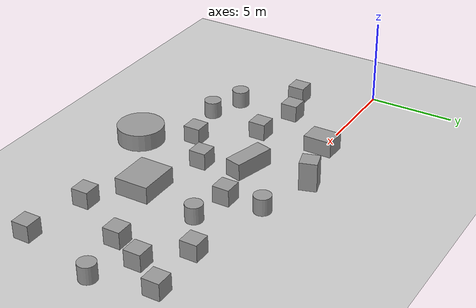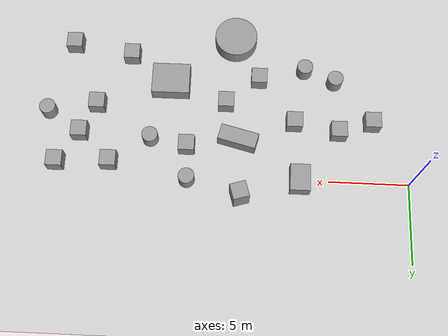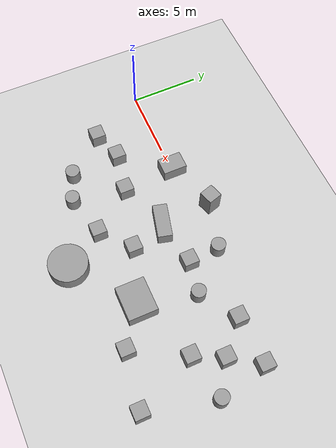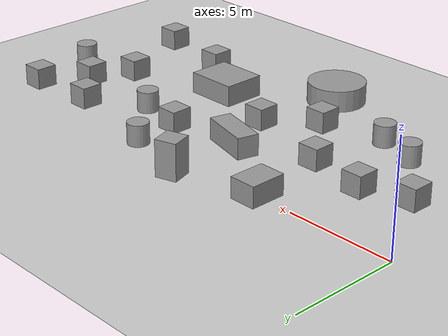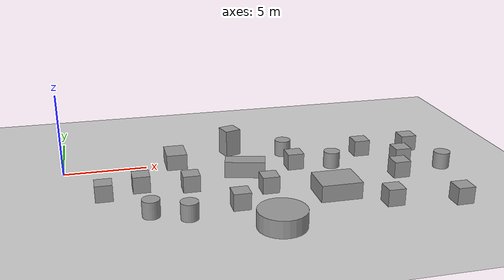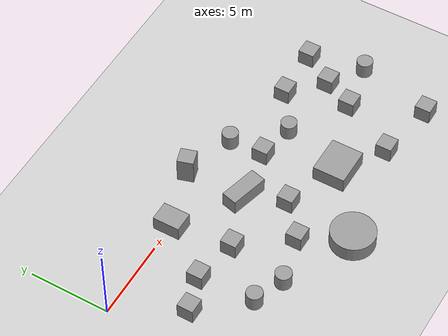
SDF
<sdf version="1.7">
 <world name="default">
  <model name="ground_plane">
   <static>1</static>
   <link name="link">
    <collision name="collision">
     <geometry><plane><normal>0 0 1</normal><size>100 100</size></plane></geometry>
     <surface><friction><ode><mu>100</mu><mu2>50</mu2></ode></friction></surface>
    </collision>
    <visual name="visual">
     <cast_shadows>0</cast_shadows>
     <geometry><plane><normal>0 0 1</normal><size>100 100</size></plane></geometry>
     <material>
      <script><uri>file://media/materials/scripts/gazebo.material</uri><name>Gazebo/Grey</name></script>
     </material>
    </visual>
   </link>
  </model>
  <model name="unit_box">
   <pose>6.82342 -0.00563 0.4785 -0 -0 -0</pose>
   <link name="link">
    <inertial>
     <mass>1</mass>
     <inertia>
      <ixx>0.166667</ixx>
      <ixy>0</ixy>
      <ixz>0</ixz>
      <iyy>0.166667</iyy>
      <iyz>0</iyz>
      <izz>0.166667</izz>
     </inertia>
    </inertial>
    <collision name="collision"><geometry><box><size>1.25115 1.68193 0.956999</size></box></geometry></collision>
    <visual name="visual">
     <geometry><box><size>1.25115 1.68193 0.956999</size></box></geometry>
     <material>
      <script><name>Gazebo/Grey</name><uri>file://media/materials/scripts/gazebo.material</uri></script>
     </material>
    </visual>
   </link>
  </model>
  <model name="unit_box_0">
   <pose>2.24803 -3.96061 0.499995 -1e-05 0 0</pose>
   <link name="link">
    <inertial>
     <mass>1</mass>
     <inertia>
      <ixx>0.166667</ixx>
      <ixy>0</ixy>
      <ixz>0</ixz>
      <iyy>0.166667</iyy>
      <iyz>0</iyz>
      <izz>0.166667</izz>
     </inertia>
    </inertial>
    <collision name="collision"><geometry><box><size>1 1 1</size></box></geometry></collision>
    <visual name="visual">
     <geometry><box><size>1 1 1</size></box></geometry>
     <material>
      <script><name>Gazebo/Grey</name><uri>file://media/materials/scripts/gazebo.material</uri></script>
     </material>
    </visual>
   </link>
  </model>
  <model name="unit_box_0_clone">
   <pose>10.5432 1.18116 0.847211 5e-06 3e-06 0.296442</pose>
   <link name="link">
    <inertial>
     <mass>1</mass>
     <inertia>
      <ixx>0.166667</ixx>
      <ixy>0</ixy>
      <ixz>0</ixz>
      <iyy>0.166667</iyy>
      <iyz>0</iyz>
      <izz>0.166667</izz>
     </inertia>
    </inertial>
    <collision name="collision"><geometry><box><size>1 1 1.69443</size></box></geometry></collision>
    <visual name="visual">
     <geometry><box><size>1 1 1.69443</size></box></geometry>
     <material>
      <script><name>Gazebo/Grey</name><uri>file://media/materials/scripts/gazebo.material</uri></script>
     </material>
    </visual>
   </link>
  </model>
  <model name="unit_box_0_clone_0">
   <pose>10.7337 -2.50038 0.5 0 0 -0.251427</pose>
   <link name="link">
    <inertial>
     <mass>1</mass>
     <inertia>
      <ixx>0.166667</ixx>
      <ixy>0</ixy>
      <ixz>0</ixz>
      <iyy>0.166667</iyy>
      <iyz>0</iyz>
      <izz>0.166667</izz>
     </inertia>
    </inertial>
    <collision name="collision"><geometry><box><size>2.4261 1 1</size></box></geometry></collision>
    <visual name="visual">
     <geometry><box><size>2.4261 1 1</size></box></geometry>
     <material>
      <script><name>Gazebo/Grey</name><uri>file://media/materials/scripts/gazebo.material</uri></script>
     </material>
    </visual>
   </link>
  </model>
  <model name="unit_box_0_clone_1">
   <pose>7.20218 -3.79291 0.499995 0 -1e-05 0</pose>
   <link name="link">
    <inertial>
     <mass>1</mass>
     <inertia>
      <ixx>0.166667</ixx>
      <ixy>0</ixy>
      <ixz>0</ixz>
      <iyy>0.166667</iyy>
      <iyz>0</iyz>
      <izz>0.166667</izz>
     </inertia>
    </inertial>
    <collision name="collision"><geometry><box><size>1 1 1</size></box></geometry></collision>
    <visual name="visual">
     <geometry><box><size>1 1 1</size></box></geometry>
     <material>
      <script><name>Gazebo/Grey</name><uri>file://media/materials/scripts/gazebo.material</uri></script>
     </material>
    </visual>
   </link>
  </model>
  <model name="unit_cylinder_clone">
   <pose>16.2787 -2.40365 0.499997 4e-06 2e-06 -0</pose>
   <link name="link">
    <inertial>
     <mass>1</mass>
     <inertia><ixx>0.145833</ixx><ixy>0</ixy><ixz>0</ixz><iyy>0.145833</iyy><iyz>0</iyz><izz>0.125</izz></inertia>
    </inertial>
    <collision name="collision">
     <geometry><cylinder><radius>0.5</radius><length>1</length></cylinder></geometry>
    </collision>
    <visual name="visual">
     <geometry><cylinder><radius>0.5</radius><length>1</length></cylinder></geometry>
     <material>
      <script><name>Gazebo/Grey</name><uri>file://media/materials/scripts/gazebo.material</uri></script>
     </material>
    </visual>
   </link>
  </model>
  <model name="unit_cylinder_clone_2">
   <pose>13.845 0.208693 0.499997 3e-06 1e-06 -0</pose>
   <link name="link">
    <inertial>
     <mass>1</mass>
     <inertia><ixx>0.145833</ixx><ixy>0</ixy><ixz>0</ixz><iyy>0.145833</iyy><iyz>0</iyz><izz>0.125</izz></inertia>
    </inertial>
    <collision name="collision">
     <geometry><cylinder><radius>0.5</radius><length>1</length></cylinder></geometry>
    </collision>
    <visual name="visual">
     <geometry><cylinder><radius>0.5</radius><length>1</length></cylinder></geometry>
     <material>
      <script><name>Gazebo/Grey</name><uri>file://media/materials/scripts/gazebo.material</uri></script>
     </material>
    </visual>
   </link>
  </model>
  <model name="unit_box_0_clone_1_clone">
   <pose>19.8164 -4.60226 0.499995 -1e-05 0 0</pose>
   <link name="link">
    <inertial>
     <mass>1</mass>
     <inertia>
      <ixx>0.166667</ixx>
      <ixy>0</ixy>
      <ixz>0</ixz>
      <iyy>0.166667</iyy>
      <iyz>0</iyz>
      <izz>0.166667</izz>
     </inertia>
    </inertial>
    <collision name="collision"><geometry><box><size>1 1 1</size></box></geometry></collision>
    <visual name="visual">
     <geometry><box><size>1 1 1</size></box></geometry>
     <material>
      <script><name>Gazebo/Grey</name><uri>file://media/materials/scripts/gazebo.material</uri></script>
     </material>
    </visual>
   </link>
  </model>
  <model name="unit_box_0_clone_1_clone_0">
   <pose>15.1843 -6.29585 0.499985 -1.5e-05 -0 0</pose>
   <link name="link">
    <inertial>
     <mass>1</mass>
     <inertia>
      <ixx>0.166667</ixx>
      <ixy>0</ixy>
      <ixz>0</ixz>
      <iyy>0.166667</iyy>
      <iyz>0</iyz>
      <izz>0.166667</izz>
     </inertia>
    </inertial>
    <collision name="collision"><geometry><box><size>2.41036 2.01501 1</size></box></geometry></collision>
    <visual name="visual">
     <geometry><box><size>2.41036 2.01501 1</size></box></geometry>
     <material>
      <script><name>Gazebo/Grey</name><uri>file://media/materials/scripts/gazebo.material</uri></script>
     </material>
    </visual>
   </link>
  </model>
  <model name="unit_cylinder_clone_clone">
   <pose>4.6181 -6.72132 0.499994 -3e-06 -1e-06 -0</pose>
   <link name="link">
    <inertial>
     <mass>1</mass>
     <inertia><ixx>0.145833</ixx><ixy>0</ixy><ixz>0</ixz><iyy>0.145833</iyy><iyz>0</iyz><izz>0.125</izz></inertia>
    </inertial>
    <collision name="collision">
     <geometry><cylinder><radius>0.5</radius><length>1</length></cylinder></geometry>
    </collision>
    <visual name="visual">
     <geometry><cylinder><radius>0.5</radius><length>1</length></cylinder></geometry>
     <material>
      <script><name>Gazebo/Grey</name><uri>file://media/materials/scripts/gazebo.material</uri></script>
     </material>
    </visual>
   </link>
  </model>
  <model name="unit_cylinder_clone_clone_0">
   <pose>22.9035 -4.03068 0.499996 3e-06 1e-06 -0</pose>
   <link name="link">
    <inertial>
     <mass>1</mass>
     <inertia><ixx>0.145833</ixx><ixy>0</ixy><ixz>0</ixz><iyy>0.145833</iyy><iyz>0</iyz><izz>0.125</izz></inertia>
    </inertial>
    <collision name="collision">
     <geometry><cylinder><radius>0.5</radius><length>1</length></cylinder></geometry>
    </collision>
    <visual name="visual">
     <geometry><cylinder><radius>0.5</radius><length>1</length></cylinder></geometry>
     <material>
      <script><name>Gazebo/Grey</name><uri>file://media/materials/scripts/gazebo.material</uri></script>
     </material>
    </visual>
   </link>
  </model>
  <model name="unit_box_0_clone_1_clone_clone">
   <pose>18.7686 -0.770244 0.499995 -1e-05 0 0</pose>
   <link name="link">
    <inertial>
     <mass>1</mass>
     <inertia>
      <ixx>0.166667</ixx>
      <ixy>0</ixy>
      <ixz>0</ixz>
      <iyy>0.166667</iyy>
      <iyz>0</iyz>
      <izz>0.166667</izz>
     </inertia>
    </inertial>
    <collision name="collision"><geometry><box><size>1 1 1</size></box></geometry></collision>
    <visual name="visual">
     <geometry><box><size>1 1 1</size></box></geometry>
     <material>
      <script><name>Gazebo/Grey</name><uri>file://media/materials/scripts/gazebo.material</uri></script>
     </material>
    </visual>
   </link>
  </model>
  <model name="unit_box_0_clone_1_clone_clone_1">
   <pose>9.50581 -6.72515 0.499995 -1e-05 0 0</pose>
   <link name="link">
    <inertial>
     <mass>1</mass>
     <inertia>
      <ixx>0.166667</ixx>
      <ixy>0</ixy>
      <ixz>0</ixz>
      <iyy>0.166667</iyy>
      <iyz>0</iyz>
      <izz>0.166667</izz>
     </inertia>
    </inertial>
    <collision name="collision"><geometry><box><size>1 1 1</size></box></geometry></collision>
    <visual name="visual">
     <geometry><box><size>1 1 1</size></box></geometry>
     <material>
      <script><name>Gazebo/Grey</name><uri>file://media/materials/scripts/gazebo.material</uri></script>
     </material>
    </visual>
   </link>
  </model>
  <model name="unit_box_0_clone_4">
   <pose>13.954 -1.97413 0.499995 0 -1e-05 0</pose>
   <link name="link">
    <inertial>
     <mass>1</mass>
     <inertia>
      <ixx>0.166667</ixx>
      <ixy>0</ixy>
      <ixz>0</ixz>
      <iyy>0.166667</iyy>
      <iyz>0</iyz>
      <izz>0.166667</izz>
     </inertia>
    </inertial>
    <collision name="collision"><geometry><box><size>1 1 1</size></box></geometry></collision>
    <visual name="visual">
     <geometry><box><size>1 1 1</size></box></geometry>
     <material>
      <script><name>Gazebo/Grey</name><uri>file://media/materials/scripts/gazebo.material</uri></script>
     </material>
    </visual>
   </link>
  </model>
  <model name="unit_box_0_clone_1_clone_clone_0_clone_1">
   <pose>22.0917 -0.627986 0.499995 0 -1e-05 0</pose>
   <link name="link">
    <inertial>
     <mass>1</mass>
     <inertia>
      <ixx>0.166667</ixx>
      <ixy>0</ixy>
      <ixz>0</ixz>
      <iyy>0.166667</iyy>
      <iyz>0</iyz>
      <izz>0.166667</izz>
     </inertia>
    </inertial>
    <collision name="collision"><geometry><box><size>1 1 1</size></box></geometry></collision>
    <visual name="visual">
     <geometry><box><size>1 1 1</size></box></geometry>
     <material>
      <script><name>Gazebo/Grey</name><uri>file://media/materials/scripts/gazebo.material</uri></script>
     </material>
    </visual>
   </link>
  </model>
  <model name="unit_box_0_clone_1_clone_clone_0_clone_2">
   <pose>20.7682 -2.64974 0.499995 0 -1e-05 0</pose>
   <link name="link">
    <inertial>
     <mass>1</mass>
     <inertia>
      <ixx>0.166667</ixx>
      <ixy>0</ixy>
      <ixz>0</ixz>
      <iyy>0.166667</iyy>
      <iyz>0</iyz>
      <izz>0.166667</izz>
     </inertia>
    </inertial>
    <collision name="collision"><geometry><box><size>1 1 1</size></box></geometry></collision>
    <visual name="visual">
     <geometry><box><size>1 1 1</size></box></geometry>
     <material>
      <script><name>Gazebo/Grey</name><uri>file://media/materials/scripts/gazebo.material</uri></script>
     </material>
    </visual>
   </link>
  </model>
  <model name="unit_box_0_clone_1_clone_clone_0_clone_4">
   <pose>11.5756 -4.99069 0.499995 0 -1e-05 0</pose>
   <link name="link">
    <inertial>
     <mass>1</mass>
     <inertia>
      <ixx>0.166667</ixx>
      <ixy>0</ixy>
      <ixz>0</ixz>
      <iyy>0.166667</iyy>
      <iyz>0</iyz>
      <izz>0.166667</izz>
     </inertia>
    </inertial>
    <collision name="collision"><geometry><box><size>1 1 1</size></box></geometry></collision>
    <visual name="visual">
     <geometry><box><size>1 1 1</size></box></geometry>
     <material>
      <script><name>Gazebo/Grey</name><uri>file://media/materials/scripts/gazebo.material</uri></script>
     </material>
    </visual>
   </link>
  </model>
  <model name="unit_box_0_clone_1_clone_clone_0_clone_7">
   <pose>4.39288 -3.25584 0.499995 0 -1e-05 0</pose>
   <link name="link">
    <inertial>
     <mass>1</mass>
     <inertia>
      <ixx>0.166667</ixx>
      <ixy>0</ixy>
      <ixz>0</ixz>
      <iyy>0.166667</iyy>
      <iyz>0</iyz>
      <izz>0.166667</izz>
     </inertia>
    </inertial>
    <collision name="collision"><geometry><box><size>1 1 1</size></box></geometry></collision>
    <visual name="visual">
     <geometry><box><size>1 1 1</size></box></geometry>
     <material>
      <script><name>Gazebo/Grey</name><uri>file://media/materials/scripts/gazebo.material</uri></script>
     </material>
    </visual>
   </link>
  </model>
  <model name="unit_box_0_clone_1_clone_clone_0_clone_12">
   <pose>17.8483 -8.1336 0.499995 0 -1e-05 0</pose>
   <link name="link">
    <inertial>
     <mass>1</mass>
     <inertia>
      <ixx>0.166667</ixx>
      <ixy>0</ixy>
      <ixz>0</ixz>
      <iyy>0.166667</iyy>
      <iyz>0</iyz>
      <izz>0.166667</izz>
     </inertia>
    </inertial>
    <collision name="collision"><geometry><box><size>1 1 1</size></box></geometry></collision>
    <visual name="visual">
     <geometry><box><size>1 1 1</size></box></geometry>
     <material>
      <script><name>Gazebo/Grey</name><uri>file://media/materials/scripts/gazebo.material</uri></script>
     </material>
    </visual>
   </link>
  </model>
  <model name="unit_box_0_clone_1_clone_clone_0_clone_13">
   <pose>21.6634 -8.80501 0.499995 0 -1e-05 0</pose>
   <link name="link">
    <inertial>
     <mass>1</mass>
     <inertia>
      <ixx>0.166667</ixx>
      <ixy>0</ixy>
      <ixz>0</ixz>
      <iyy>0.166667</iyy>
      <iyz>0</iyz>
      <izz>0.166667</izz>
     </inertia>
    </inertial>
    <collision name="collision"><geometry><box><size>1 1 1</size></box></geometry></collision>
    <visual name="visual">
     <geometry><box><size>1 1 1</size></box></geometry>
     <material>
      <script><name>Gazebo/Grey</name><uri>file://media/materials/scripts/gazebo.material</uri></script>
     </material>
    </visual>
   </link>
  </model>
  <model name="unit_cylinder_clone_clone_clone">
   <pose>6.57343 -7.46268 0.499993 -3e-06 -1e-06 -0</pose>
   <link name="link">
    <inertial>
     <mass>1</mass>
     <inertia><ixx>0.145833</ixx><ixy>0</ixy><ixz>0</ixz><iyy>0.145833</iyy><iyz>0</iyz><izz>0.125</izz></inertia>
    </inertial>
    <collision name="collision">
     <geometry><cylinder><radius>0.5</radius><length>1</length></cylinder></geometry>
    </collision>
    <visual name="visual">
     <geometry><cylinder><radius>0.5</radius><length>1</length></cylinder></geometry>
     <material>
      <script><name>Gazebo/Grey</name><uri>file://media/materials/scripts/gazebo.material</uri></script>
     </material>
    </visual>
   </link>
  </model>
  <model name="unit_cylinder_clone_clone_clone_0">
   <pose>11.095 -9.45279 0.499989 7e-06 7e-06 -0.000412</pose>
   <link name="link">
    <inertial>
     <mass>1</mass>
     <inertia><ixx>0.145833</ixx><ixy>0</ixy><ixz>0</ixz><iyy>0.145833</iyy><iyz>0</iyz><izz>0.125</izz></inertia>
    </inertial>
    <collision name="collision">
     <geometry><cylinder><radius>1.36235</radius><length>1</length></cylinder></geometry>
    </collision>
    <visual name="visual">
     <geometry><cylinder><radius>1.36235</radius><length>1</length></cylinder></geometry>
     <material>
      <script><name>Gazebo/Grey</name><uri>file://media/materials/scripts/gazebo.material</uri></script>
     </material>
    </visual>
   </link>
  </model>
 </world>
</sdf>
